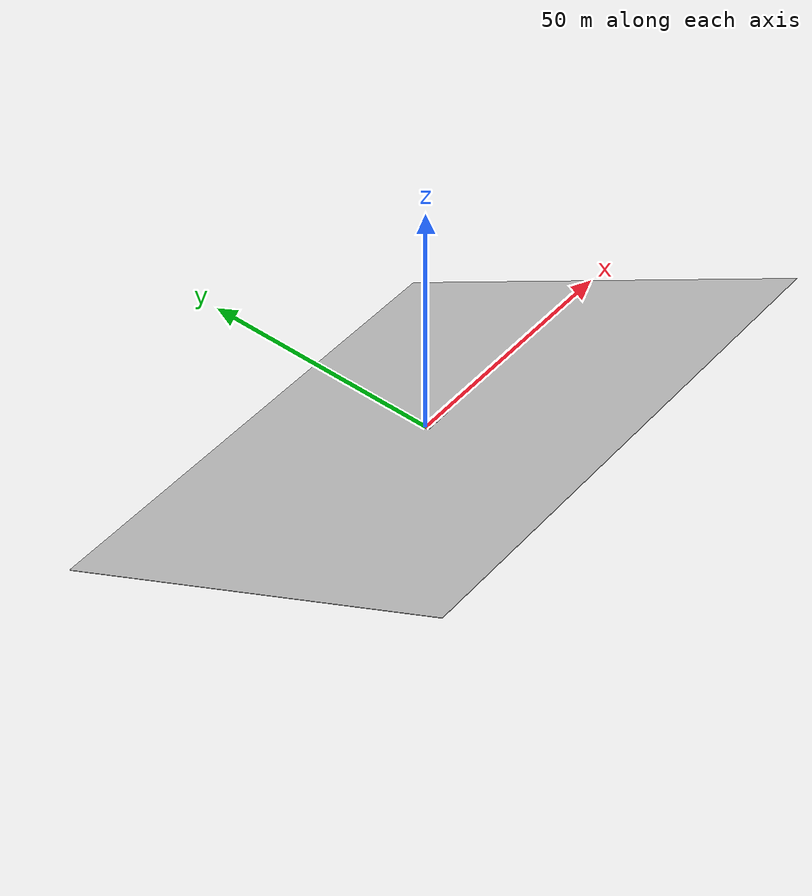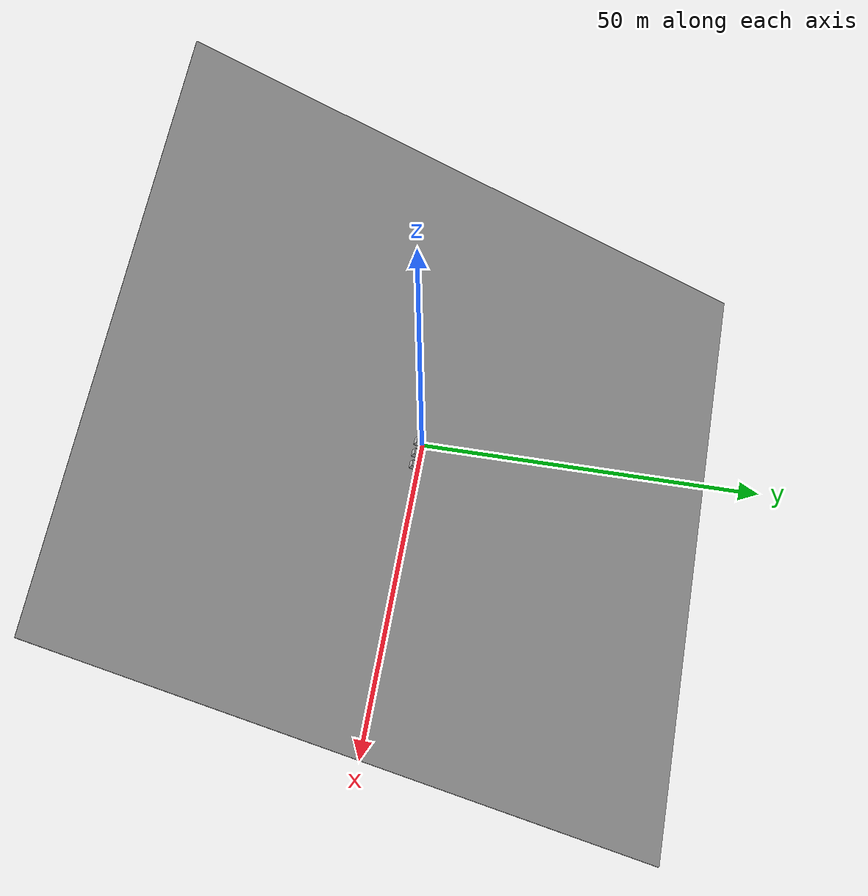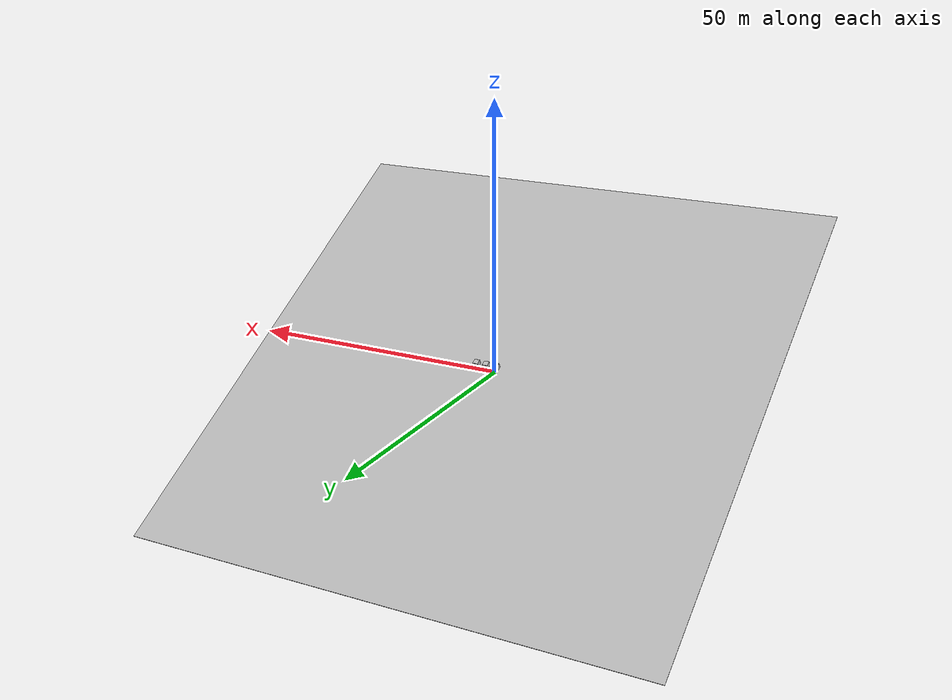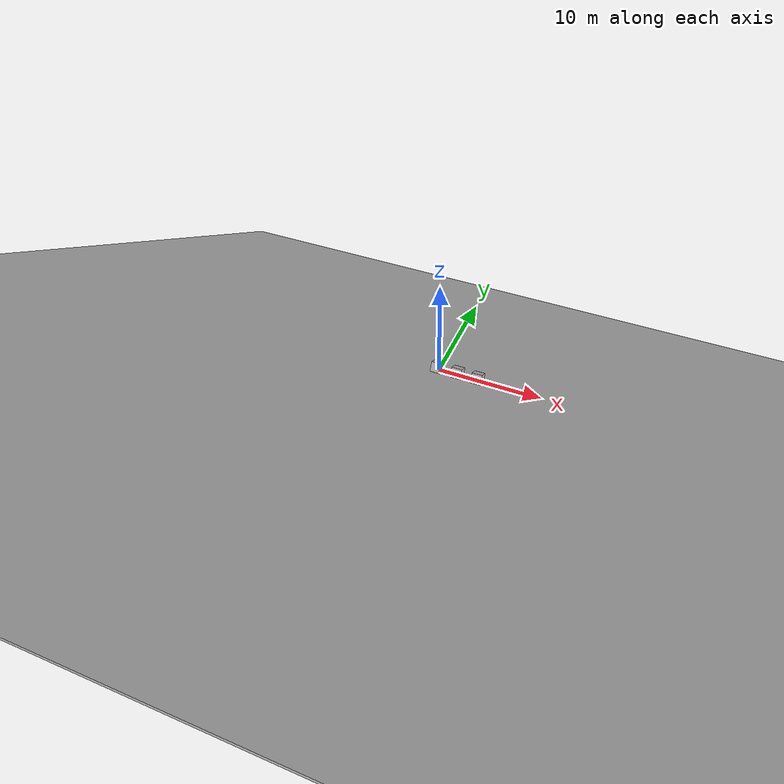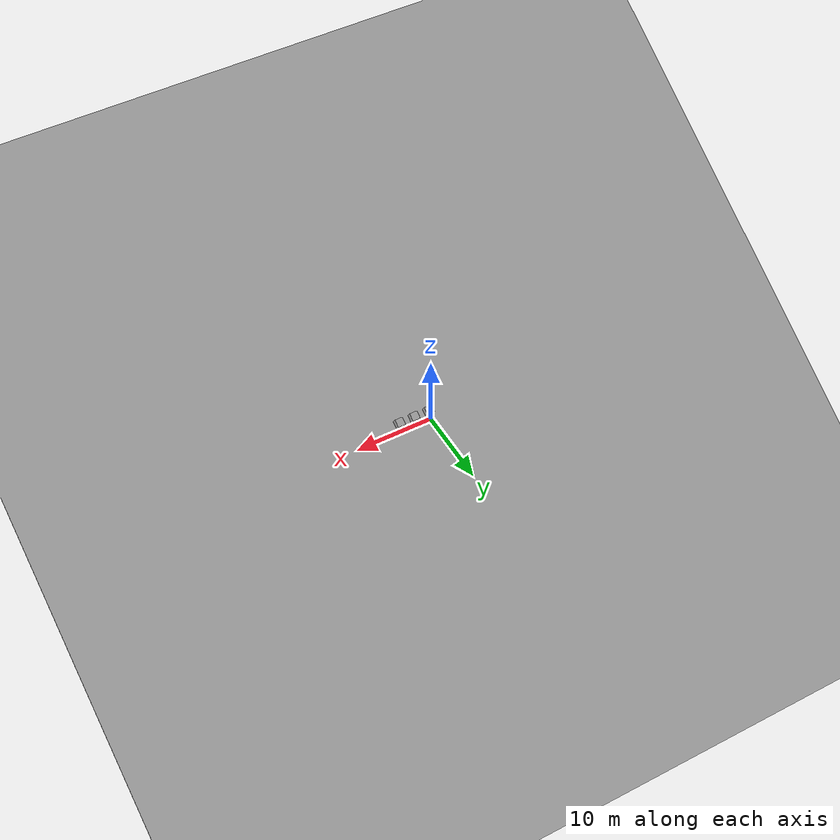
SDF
<?xml version="1.0" ?>
<sdf version="1.6">
  <world name="default">
    <plugin
      filename="gz-sim-apply-link-wrench-system"
      name="gz::sim::systems::ApplyLinkWrench">
    </plugin>

    <physics name="fast" type="ignored">
      <real_time_factor>0</real_time_factor>
    </physics>

    <plugin
      filename="gz-sim-physics-system"
      name="gz::sim::systems::Physics">
    </plugin>
    <plugin
      filename="gz-sim-user-commands-system"
      name="gz::sim::systems::UserCommands">
    </plugin>
    <plugin
      filename="gz-sim-scene-broadcaster-system"
      name="gz::sim::systems::SceneBroadcaster">
    </plugin>
    <plugin
      filename="gz-sim-contact-system"
      name="gz::sim::systems::Contact">
    </plugin>

    <light type="directional" name="sun">
      <cast_shadows>true</cast_shadows>
      <pose>0 0 10 0 0 0</pose>
      <diffuse>0.8 0.8 0.8 1</diffuse>
      <specular>0.2 0.2 0.2 1</specular>
      <attenuation>
        <range>1000</range>
        <constant>0.9</constant>
        <linear>0.01</linear>
        <quadratic>0.001</quadratic>
      </attenuation>
      <direction>-0.5 0.1 -0.9</direction>
    </light>

    <model name="box1">
      <pose>0 -0.8660254 0.5 -0.52359878 0 0</pose>
      <link name="box_link">
        <pose>0.0 0.0 0.5 0 0 0</pose>
        <inertial>
          <inertia>
            <ixx>10</ixx>
            <ixy>0</ixy>
            <ixz>0</ixz>
            <iyy>10</iyy>
            <iyz>0</iyz>
            <izz>10</izz>
          </inertia>
          <mass>60.0</mass>
        </inertial>
        <visual name="box_visual">
          <pose>0.0 0.0 0.0 0 0 0</pose>
          <geometry>
            <box>
              <size>1 1 1</size>
            </box>
          </geometry>
        </visual>
        <collision name="box_collision">
          <pose>0.0 0.0 0.0 0 0 0</pose>
          <geometry>
            <box>
              <size>1 1 1</size>
            </box>
          </geometry>
          <surface>
            <friction>
              <ode>
                <mu>0.01</mu>
              </ode>
            </friction>
          </surface>
        </collision>
      </link>
    </model>

    <model name="box2">
      <pose>2 -0.8660254 0.5 -0.52359878 0 0</pose>
      <link name="box_link">
        <pose>0.0 0.0 0.5 0 0 0</pose>
        <inertial>
          <inertia>
            <ixx>10</ixx>
            <ixy>0</ixy>
            <ixz>0</ixz>
            <iyy>10</iyy>
            <iyz>0</iyz>
            <izz>10</izz>
          </inertia>
          <mass>60.0</mass>
        </inertial>
        <visual name="box_visual">
          <pose>0.0 0.0 0.0 0 0 0</pose>
          <geometry>
            <box>
              <size>1 1 1</size>
            </box>
          </geometry>
        </visual>
        <collision name="box_collision">
          <pose>0.0 0.0 0.0 0 0 0</pose>
          <geometry>
            <box>
              <size>1 1 1</size>
            </box>
          </geometry>
          <surface>
            <friction>
              <ode>
                <mu>0.1</mu>
              </ode>
            </friction>
          </surface>
        </collision>
      </link>
    </model>

    <model name="box3">
      <pose>4 -0.8660254 0.5 -0.52359878 0 0</pose>
      <link name="box_link">
        <pose>0.0 0.0 0.5 0 0 0</pose>
        <inertial>
          <inertia>
            <ixx>10</ixx>
            <ixy>0</ixy>
            <ixz>0</ixz>
            <iyy>10</iyy>
            <iyz>0</iyz>
            <izz>10</izz>
          </inertia>
          <mass>60.0</mass>
        </inertial>
        <visual name="box_visual">
          <pose>0.0 0.0 0.0 0 0 0</pose>
          <geometry>
            <box>
              <size>1 1 1</size>
            </box>
          </geometry>
        </visual>
        <collision name="box_collision">
          <pose>0.0 0.0 0.0 0 0 0</pose>
          <geometry>
            <box>
              <size>1 1 1</size>
            </box>
          </geometry>
          <surface>
            <friction>
              <ode>
                <mu>1.0</mu>
              </ode>
            </friction>
          </surface>
        </collision>
      </link>
    </model>
    <model name="plane">
      <static>1</static>
      <!-- 30 degree incline -->
      <pose>0 0.0 0.0 -0.52359878 0 0</pose>
      <link name="plane_link">
        <collision name="collision">
          <geometry>
            <plane>
              <normal>0 0 1</normal>
              <size>100 100</size>
            </plane>
          </geometry>
          <surface>
            <friction>
              <ode>
                <mu>1.0</mu>
              </ode>
            </friction>
          </surface>
        </collision>
        <visual name="visual">
          <geometry>
            <plane>
              <normal>0 0 1</normal>
              <size>100 100</size>
            </plane>
          </geometry>
        </visual>
      </link>
    </model>
  </world>
</sdf>
